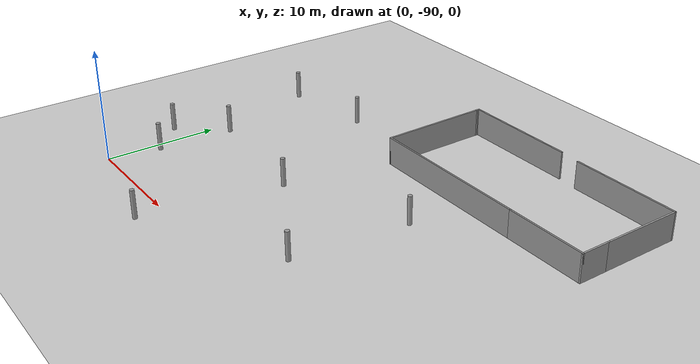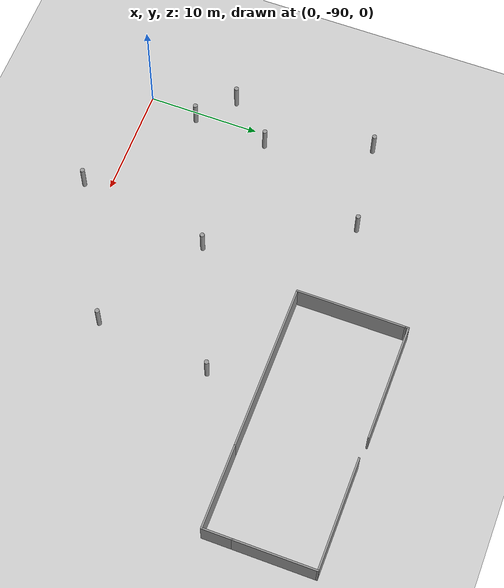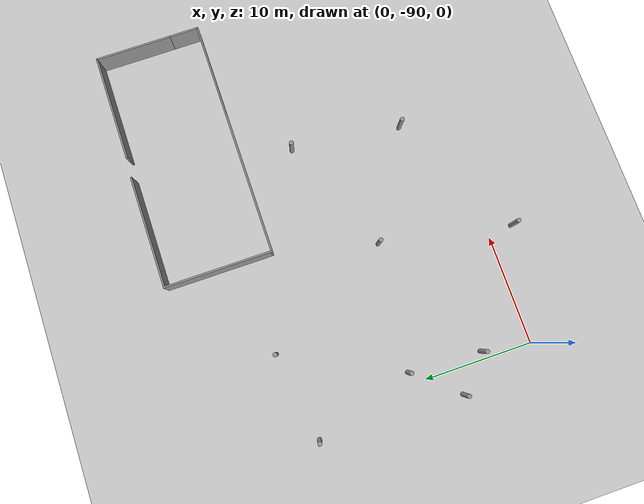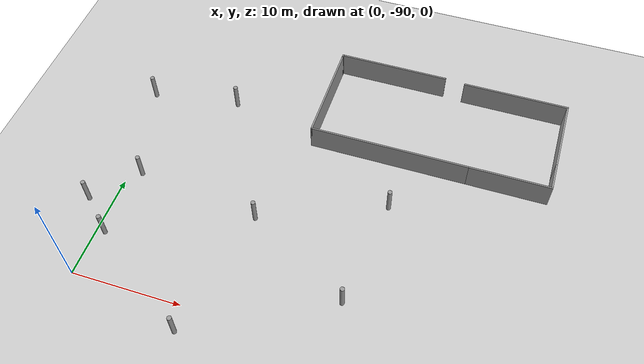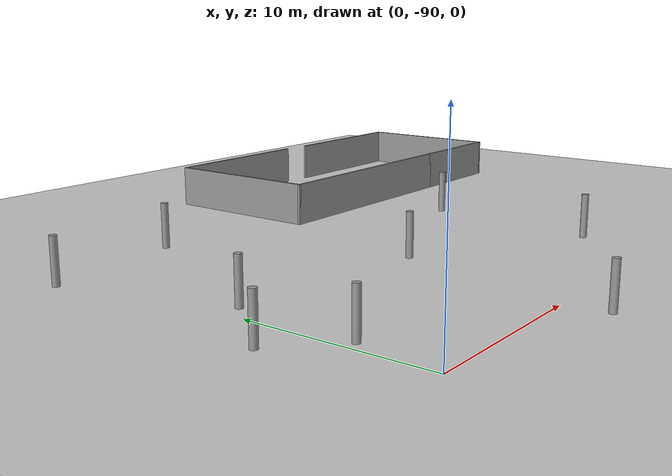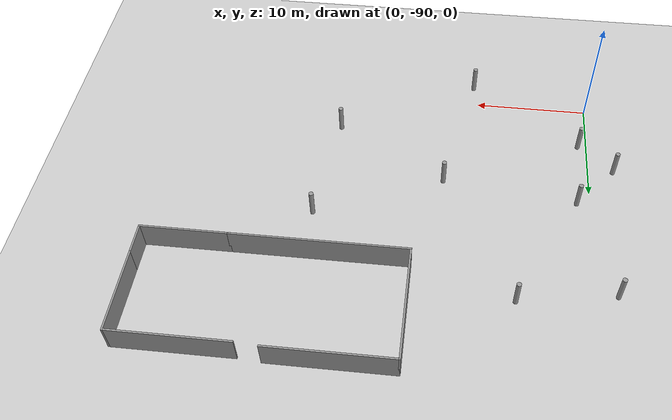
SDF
<sdf version="1.6">
 <world name="default">
  <model name="ground_plane">
   <static>1</static>
   <link name="link">
    <collision name="collision">
     <geometry><plane><normal>0 0 1</normal><size>100 100</size></plane></geometry>
     <surface><friction><ode><mu>100</mu><mu2>50</mu2></ode></friction></surface>
    </collision>
    <visual name="visual">
     <cast_shadows>0</cast_shadows>
     <geometry><plane><normal>0 0 1</normal><size>100 100</size></plane></geometry>
     <material>
      <script><uri>file://media/materials/scripts/gazebo.material</uri><name>Gazebo/Grey</name></script>
     </material>
    </visual>
   </link>
  </model>
  <model name="empty_pillars_12">
   <model name="empty_pillar_clone_32">
    <link name="link">
     <inertial>
      <mass>1</mass>
      <inertia><ixx>0.145833</ixx><ixy>0</ixy><ixz>0</ixz><iyy>0.145833</iyy><iyz>0</iyz><izz>0.125</izz></inertia>
     </inertial>
     <visual name="visual">
      <geometry><cylinder><radius>0.2</radius><length>5</length></cylinder></geometry>
      <material>
       <script><name>Gazebo/Grey</name><uri>file://media/materials/scripts/gazebo.material</uri></script>
       <shader type="vertex"><normal_map>__default__</normal_map></shader>
       <ambient>0.3 0.3 0.3 1</ambient>
       <diffuse>0.7 0.7 0.7 1</diffuse>
       <specular>0.01 0.01 0.01 1</specular>
       <emissive>0 0 0 1</emissive>
      </material>
     </visual>
     <collision name="collision">
      <geometry><cylinder><radius>0.05</radius><length>5</length></cylinder></geometry>
      <surface>
       <friction>
        <ode><mu>1</mu><mu2>1</mu2><fdir1>0 0 0</fdir1><slip1>0</slip1><slip2>0</slip2></ode>
        <torsional>
         <coefficient>1</coefficient>
         <patch_radius>0</patch_radius>
         <surface_radius>0</surface_radius>
         <use_patch_radius>1</use_patch_radius>
         <ode><slip>0</slip></ode>
        </torsional>
       </friction>
       <bounce><restitution_coefficient>0</restitution_coefficient><threshold>1e+06</threshold></bounce>
       <contact>
        <collide_without_contact>0</collide_without_contact>
        <collide_without_contact_bitmask>1</collide_without_contact_bitmask>
        <collide_bitmask>1</collide_bitmask>
        <ode>
         <soft_cfm>0</soft_cfm>
         <soft_erp>0.2</soft_erp>
         <kp>1e+13</kp>
         <kd>1</kd>
         <max_vel>0.01</max_vel>
         <min_depth>0</min_depth>
        </ode>
        <bullet>
         <split_impulse>1</split_impulse>
         <split_impulse_penetration_threshold>-0.01</split_impulse_penetration_threshold>
         <soft_cfm>0</soft_cfm>
         <soft_erp>0.2</soft_erp>
         <kp>1e+13</kp>
         <kd>1</kd>
        </bullet>
       </contact>
      </surface>
     </collision>
    </link>
    <static>0</static>
    <pose>21.9854 0.15966 0 0 -0 0</pose>
   </model>
   <model name="empty_pillar_clone_33">
    <link name="link">
     <inertial>
      <mass>1</mass>
      <inertia><ixx>0.145833</ixx><ixy>0</ixy><ixz>0</ixz><iyy>0.145833</iyy><iyz>0</iyz><izz>0.125</izz></inertia>
     </inertial>
     <visual name="visual">
      <geometry><cylinder><radius>0.2</radius><length>5</length></cylinder></geometry>
      <material>
       <script><name>Gazebo/Grey</name><uri>file://media/materials/scripts/gazebo.material</uri></script>
       <shader type="vertex"><normal_map>__default__</normal_map></shader>
       <ambient>0.3 0.3 0.3 1</ambient>
       <diffuse>0.7 0.7 0.7 1</diffuse>
       <specular>0.01 0.01 0.01 1</specular>
       <emissive>0 0 0 1</emissive>
      </material>
     </visual>
     <collision name="collision">
      <geometry><cylinder><radius>0.05</radius><length>5</length></cylinder></geometry>
      <surface>
       <friction>
        <ode><mu>1</mu><mu2>1</mu2><fdir1>0 0 0</fdir1><slip1>0</slip1><slip2>0</slip2></ode>
        <torsional>
         <coefficient>1</coefficient>
         <patch_radius>0</patch_radius>
         <surface_radius>0</surface_radius>
         <use_patch_radius>1</use_patch_radius>
         <ode><slip>0</slip></ode>
        </torsional>
       </friction>
       <bounce><restitution_coefficient>0</restitution_coefficient><threshold>1e+06</threshold></bounce>
       <contact>
        <collide_without_contact>0</collide_without_contact>
        <collide_without_contact_bitmask>1</collide_without_contact_bitmask>
        <collide_bitmask>1</collide_bitmask>
        <ode>
         <soft_cfm>0</soft_cfm>
         <soft_erp>0.2</soft_erp>
         <kp>1e+13</kp>
         <kd>1</kd>
         <max_vel>0.01</max_vel>
         <min_depth>0</min_depth>
        </ode>
        <bullet>
         <split_impulse>1</split_impulse>
         <split_impulse_penetration_threshold>-0.01</split_impulse_penetration_threshold>
         <soft_cfm>0</soft_cfm>
         <soft_erp>0.2</soft_erp>
         <kp>1e+13</kp>
         <kd>1</kd>
        </bullet>
       </contact>
      </surface>
     </collision>
    </link>
    <static>0</static>
    <pose>21.5621 -13.0704 0 0 -0 0</pose>
   </model>
   <model name="empty_pillar_clone_54">
    <link name="link">
     <inertial>
      <mass>1</mass>
      <inertia><ixx>0.145833</ixx><ixy>0</ixy><ixz>0</ixz><iyy>0.145833</iyy><iyz>0</iyz><izz>0.125</izz></inertia>
     </inertial>
     <visual name="visual">
      <geometry><cylinder><radius>0.2</radius><length>5</length></cylinder></geometry>
      <material>
       <script><name>Gazebo/Grey</name><uri>file://media/materials/scripts/gazebo.material</uri></script>
       <shader type="vertex"><normal_map>__default__</normal_map></shader>
       <ambient>0.3 0.3 0.3 1</ambient>
       <diffuse>0.7 0.7 0.7 1</diffuse>
       <specular>0.01 0.01 0.01 1</specular>
       <emissive>0 0 0 1</emissive>
      </material>
     </visual>
     <collision name="collision">
      <geometry><cylinder><radius>0.05</radius><length>5</length></cylinder></geometry>
      <surface>
       <friction>
        <ode><mu>1</mu><mu2>1</mu2><fdir1>0 0 0</fdir1><slip1>0</slip1><slip2>0</slip2></ode>
        <torsional>
         <coefficient>1</coefficient>
         <patch_radius>0</patch_radius>
         <surface_radius>0</surface_radius>
         <use_patch_radius>1</use_patch_radius>
         <ode><slip>0</slip></ode>
        </torsional>
       </friction>
       <bounce><restitution_coefficient>0</restitution_coefficient><threshold>1e+06</threshold></bounce>
       <contact>
        <collide_without_contact>0</collide_without_contact>
        <collide_without_contact_bitmask>1</collide_without_contact_bitmask>
        <collide_bitmask>1</collide_bitmask>
        <ode>
         <soft_cfm>0</soft_cfm>
         <soft_erp>0.2</soft_erp>
         <kp>1e+13</kp>
         <kd>1</kd>
         <max_vel>0.01</max_vel>
         <min_depth>0</min_depth>
        </ode>
        <bullet>
         <split_impulse>1</split_impulse>
         <split_impulse_penetration_threshold>-0.01</split_impulse_penetration_threshold>
         <soft_cfm>0</soft_cfm>
         <soft_erp>0.2</soft_erp>
         <kp>1e+13</kp>
         <kd>1</kd>
        </bullet>
       </contact>
      </surface>
     </collision>
    </link>
    <static>0</static>
    <pose>24.557 -15.8784 0 0 -0 0</pose>
   </model>
   <model name="empty_pillar_clone_6">
    <link name="link">
     <inertial>
      <mass>1</mass>
      <inertia><ixx>0.145833</ixx><ixy>0</ixy><ixz>0</ixz><iyy>0.145833</iyy><iyz>0</iyz><izz>0.125</izz></inertia>
     </inertial>
     <visual name="visual">
      <geometry><cylinder><radius>0.2</radius><length>5</length></cylinder></geometry>
      <material>
       <script><name>Gazebo/Grey</name><uri>file://media/materials/scripts/gazebo.material</uri></script>
       <shader type="vertex"><normal_map>__default__</normal_map></shader>
       <ambient>0.3 0.3 0.3 1</ambient>
       <diffuse>0.7 0.7 0.7 1</diffuse>
       <specular>0.01 0.01 0.01 1</specular>
       <emissive>0 0 0 1</emissive>
      </material>
     </visual>
     <collision name="collision">
      <geometry><cylinder><radius>0.05</radius><length>5</length></cylinder></geometry>
      <surface>
       <friction>
        <ode><mu>1</mu><mu2>1</mu2><fdir1>0 0 0</fdir1><slip1>0</slip1><slip2>0</slip2></ode>
        <torsional>
         <coefficient>1</coefficient>
         <patch_radius>0</patch_radius>
         <surface_radius>0</surface_radius>
         <use_patch_radius>1</use_patch_radius>
         <ode><slip>0</slip></ode>
        </torsional>
       </friction>
       <bounce><restitution_coefficient>0</restitution_coefficient><threshold>1e+06</threshold></bounce>
       <contact>
        <collide_without_contact>0</collide_without_contact>
        <collide_without_contact_bitmask>1</collide_without_contact_bitmask>
        <collide_bitmask>1</collide_bitmask>
        <ode>
         <soft_cfm>0</soft_cfm>
         <soft_erp>0.2</soft_erp>
         <kp>1e+13</kp>
         <kd>1</kd>
         <max_vel>0.01</max_vel>
         <min_depth>0</min_depth>
        </ode>
        <bullet>
         <split_impulse>1</split_impulse>
         <split_impulse_penetration_threshold>-0.01</split_impulse_penetration_threshold>
         <soft_cfm>0</soft_cfm>
         <soft_erp>0.2</soft_erp>
         <kp>1e+13</kp>
         <kd>1</kd>
        </bullet>
       </contact>
      </surface>
     </collision>
    </link>
    <static>0</static>
    <pose>24.9156 -9.11394 0 0 -0 0</pose>
   </model>
   <static>0</static>
   <pose>-23.7837 -69.5726 0 0 -0 0</pose>
  </model>
  <model name="Cangku">
   <pose>26.0464 -65.7485 0 0 -0 0</pose>
   <link name="Wall_0">
    <collision name="Wall_0_Collision">
     <geometry><box><size>15 0.15 2.5</size></box></geometry>
     <pose>0 0 1.25 0 -0 0</pose>
    </collision>
    <visual name="Wall_0_Visual">
     <pose>0 0 1.25 0 -0 0</pose>
     <geometry><box><size>15 0.15 2.5</size></box></geometry>
     <material>
      <script><uri>file://media/materials/scripts/gazebo.material</uri><name>Gazebo/Grey</name></script>
      <ambient>1 1 1 1</ambient>
     </material>
     <meta><layer>0</layer></meta>
    </visual>
    <pose>-3.675 -4.925 0 0 -0 0</pose>
   </link>
   <link name="Wall_1">
    <collision name="Wall_1_Collision">
     <geometry><box><size>7.5 0.15 2.5</size></box></geometry>
     <pose>0 0 1.25 0 -0 0</pose>
    </collision>
    <visual name="Wall_1_Visual">
     <pose>0 0 1.25 0 -0 0</pose>
     <geometry><box><size>7.5 0.15 2.5</size></box></geometry>
     <material>
      <script><uri>file://media/materials/scripts/gazebo.material</uri><name>Gazebo/Grey</name></script>
      <ambient>1 1 1 1</ambient>
     </material>
     <meta><layer>0</layer></meta>
    </visual>
    <pose>7.425 -4.925 0 0 -0 0</pose>
   </link>
   <link name="Wall_10">
    <collision name="Wall_10_Collision">
     <geometry><box><size>0.15 0.15 2.5</size></box></geometry>
     <pose>0 0 1.25 0 -0 0</pose>
    </collision>
    <visual name="Wall_10_Visual">
     <pose>0 0 1.25 0 -0 0</pose>
     <geometry><box><size>0.15 0.15 2.5</size></box></geometry>
     <material>
      <script><uri>file://media/materials/scripts/gazebo.material</uri><name>Gazebo/Grey</name></script>
      <ambient>1 1 1 1</ambient>
     </material>
     <meta><layer>0</layer></meta>
    </visual>
    <pose>-11.1 4.675 0 0 -0 0</pose>
   </link>
   <link name="Wall_11">
    <collision name="Wall_11_Collision">
     <geometry><box><size>0.15 0.15 2.5</size></box></geometry>
     <pose>0 0 1.25 0 -0 0</pose>
    </collision>
    <visual name="Wall_11_Visual">
     <pose>0 0 1.25 0 -0 0</pose>
     <geometry><box><size>0.15 0.15 2.5</size></box></geometry>
     <material>
      <script><uri>file://media/materials/scripts/gazebo.material</uri><name>Gazebo/Grey</name></script>
      <ambient>1 1 1 1</ambient>
     </material>
     <meta><layer>0</layer></meta>
    </visual>
    <pose>-11.1 4.675 0 0 -0 0</pose>
   </link>
   <link name="Wall_12">
    <collision name="Wall_12_Collision">
     <geometry><box><size>0.15 0.15 2.5</size></box></geometry>
     <pose>0 0 1.25 0 -0 0</pose>
    </collision>
    <visual name="Wall_12_Visual">
     <pose>0 0 1.25 0 -0 0</pose>
     <geometry><box><size>0.15 0.15 2.5</size></box></geometry>
     <material>
      <script><uri>file://media/materials/scripts/gazebo.material</uri><name>Gazebo/Grey</name></script>
      <ambient>1 1 1 1</ambient>
     </material>
     <meta><layer>0</layer></meta>
    </visual>
    <pose>-11.1 4.675 0 0 -0 0</pose>
   </link>
   <link name="Wall_14">
    <collision name="Wall_14_Collision">
     <geometry><box><size>10 0.15 2.5</size></box></geometry>
     <pose>0 0 1.25 0 -0 0</pose>
    </collision>
    <visual name="Wall_14_Visual">
     <pose>0 0 1.25 0 -0 0</pose>
     <geometry><box><size>10 0.15 2.5</size></box></geometry>
     <material>
      <script><uri>file://media/materials/scripts/gazebo.material</uri><name>Gazebo/Grey</name></script>
      <ambient>1 1 1 1</ambient>
     </material>
     <meta><layer>0</layer></meta>
    </visual>
    <pose>-11.1 -0 0 0 -0 1.5708</pose>
   </link>
   <link name="Wall_2">
    <collision name="Wall_2_Collision">
     <geometry><box><size>2.75 0.15 2.5</size></box></geometry>
     <pose>0 0 1.25 0 -0 0</pose>
    </collision>
    <visual name="Wall_2_Visual">
     <pose>0 0 1.25 0 -0 0</pose>
     <geometry><box><size>2.75 0.15 2.5</size></box></geometry>
     <material>
      <script><uri>file://media/materials/scripts/gazebo.material</uri><name>Gazebo/Grey</name></script>
      <ambient>1 1 1 1</ambient>
     </material>
     <meta><layer>0</layer></meta>
    </visual>
    <pose>11.1 -3.625 0 0 -0 1.5708</pose>
   </link>
   <link name="Wall_21">
    <collision name="Wall_21_Collision">
     <geometry><box><size>7.25 0.15 2.5</size></box></geometry>
     <pose>0 0 1.25 0 -0 0</pose>
    </collision>
    <visual name="Wall_21_Visual">
     <pose>0 0 1.25 0 -0 0</pose>
     <geometry><box><size>7.25 0.15 2.5</size></box></geometry>
     <material>
      <script><uri>file://media/materials/scripts/gazebo.material</uri><name>Gazebo/Grey</name></script>
      <ambient>1 1 1 1</ambient>
     </material>
     <meta><layer>0</layer></meta>
    </visual>
    <pose>11.1 1.225 0 0 -0 1.5708</pose>
   </link>
   <link name="Wall_22">
    <collision name="Wall_22_Collision">
     <geometry><box><size>10 0.15 2.5</size></box></geometry>
     <pose>0 0 1.25 0 -0 0</pose>
    </collision>
    <visual name="Wall_22_Visual">
     <pose>0 0 1.25 0 -0 0</pose>
     <geometry><box><size>10 0.15 2.5</size></box></geometry>
     <material>
      <script><uri>file://media/materials/scripts/gazebo.material</uri><name>Gazebo/Grey</name></script>
      <ambient>1 1 1 1</ambient>
     </material>
     <meta><layer>0</layer></meta>
    </visual>
    <pose>6.175 4.775 0 0 -0 3.14159</pose>
   </link>
   <link name="Wall_24">
    <collision name="Wall_24_Collision">
     <geometry><box><size>10.5 0.15 2.5</size></box></geometry>
     <pose>0 0 1.25 0 -0 0</pose>
    </collision>
    <visual name="Wall_24_Visual">
     <pose>0 0 1.25 0 -0 0</pose>
     <geometry><box><size>10.5 0.15 2.5</size></box></geometry>
     <material>
      <script><uri>file://media/materials/scripts/gazebo.material</uri><name>Gazebo/Grey</name></script>
      <ambient>1 1 1 1</ambient>
     </material>
     <meta><layer>0</layer></meta>
    </visual>
    <pose>-5.925 4.925 0 0 -0 0</pose>
   </link>
   <link name="Wall_9">
    <collision name="Wall_9_Collision">
     <geometry><box><size>0.15 0.15 2.5</size></box></geometry>
     <pose>0 0 1.25 0 -0 0</pose>
    </collision>
    <visual name="Wall_9_Visual">
     <pose>0 0 1.25 0 -0 0</pose>
     <geometry><box><size>0.15 0.15 2.5</size></box></geometry>
     <material>
      <script><uri>file://media/materials/scripts/gazebo.material</uri><name>Gazebo/Grey</name></script>
      <ambient>1 1 1 1</ambient>
     </material>
     <meta><layer>0</layer></meta>
    </visual>
    <pose>-11.1 4.675 0 0 -0 0</pose>
   </link>
   <static>1</static>
  </model>
  <model name="empty_pillar_0_clone_2">
   <link name="link">
    <inertial>
     <mass>1</mass>
     <inertia><ixx>0.145833</ixx><ixy>0</ixy><ixz>0</ixz><iyy>0.145833</iyy><iyz>0</iyz><izz>0.125</izz></inertia>
    </inertial>
    <visual name="visual">
     <geometry><cylinder><radius>0.2</radius><length>5</length></cylinder></geometry>
     <material>
      <script><name>Gazebo/Grey</name><uri>file://media/materials/scripts/gazebo.material</uri></script>
      <shader type="vertex"><normal_map>__default__</normal_map></shader>
      <ambient>0.3 0.3 0.3 1</ambient>
      <diffuse>0.7 0.7 0.7 1</diffuse>
      <specular>0.01 0.01 0.01 1</specular>
      <emissive>0 0 0 1</emissive>
     </material>
    </visual>
    <collision name="collision">
     <geometry><cylinder><radius>0.05</radius><length>5</length></cylinder></geometry>
     <surface>
      <friction>
       <ode><mu>1</mu><mu2>1</mu2><fdir1>0 0 0</fdir1><slip1>0</slip1><slip2>0</slip2></ode>
       <torsional>
        <coefficient>1</coefficient>
        <patch_radius>0</patch_radius>
        <surface_radius>0</surface_radius>
        <use_patch_radius>1</use_patch_radius>
        <ode><slip>0</slip></ode>
       </torsional>
      </friction>
      <bounce><restitution_coefficient>0</restitution_coefficient><threshold>1e+06</threshold></bounce>
      <contact>
       <collide_without_contact>0</collide_without_contact>
       <collide_without_contact_bitmask>1</collide_without_contact_bitmask>
       <collide_bitmask>1</collide_bitmask>
       <ode>
        <soft_cfm>0</soft_cfm>
        <soft_erp>0.2</soft_erp>
        <kp>1e+13</kp>
        <kd>1</kd>
        <max_vel>0.01</max_vel>
        <min_depth>0</min_depth>
       </ode>
       <bullet>
        <split_impulse>1</split_impulse>
        <split_impulse_penetration_threshold>-0.01</split_impulse_penetration_threshold>
        <soft_cfm>0</soft_cfm>
        <soft_erp>0.2</soft_erp>
        <kp>1e+13</kp>
        <kd>1</kd>
       </bullet>
      </contact>
     </surface>
    </collision>
   </link>
   <static>0</static>
   <pose>12.8006 -80.1039 0 0 -0 0</pose>
  </model>
  <model name="empty_pillar_0_clone_4">
   <link name="link">
    <inertial>
     <mass>1</mass>
     <inertia><ixx>0.145833</ixx><ixy>0</ixy><ixz>0</ixz><iyy>0.145833</iyy><iyz>0</iyz><izz>0.125</izz></inertia>
    </inertial>
    <visual name="visual">
     <geometry><cylinder><radius>0.2</radius><length>5</length></cylinder></geometry>
     <material>
      <script><name>Gazebo/Grey</name><uri>file://media/materials/scripts/gazebo.material</uri></script>
      <shader type="vertex"><normal_map>__default__</normal_map></shader>
      <ambient>0.3 0.3 0.3 1</ambient>
      <diffuse>0.7 0.7 0.7 1</diffuse>
      <specular>0.01 0.01 0.01 1</specular>
      <emissive>0 0 0 1</emissive>
     </material>
    </visual>
    <collision name="collision">
     <geometry><cylinder><radius>0.05</radius><length>5</length></cylinder></geometry>
     <surface>
      <friction>
       <ode><mu>1</mu><mu2>1</mu2><fdir1>0 0 0</fdir1><slip1>0</slip1><slip2>0</slip2></ode>
       <torsional>
        <coefficient>1</coefficient>
        <patch_radius>0</patch_radius>
        <surface_radius>0</surface_radius>
        <use_patch_radius>1</use_patch_radius>
        <ode><slip>0</slip></ode>
       </torsional>
      </friction>
      <bounce><restitution_coefficient>0</restitution_coefficient><threshold>1e+06</threshold></bounce>
      <contact>
       <collide_without_contact>0</collide_without_contact>
       <collide_without_contact_bitmask>1</collide_without_contact_bitmask>
       <collide_bitmask>1</collide_bitmask>
       <ode>
        <soft_cfm>0</soft_cfm>
        <soft_erp>0.2</soft_erp>
        <kp>1e+13</kp>
        <kd>1</kd>
        <max_vel>0.01</max_vel>
        <min_depth>0</min_depth>
       </ode>
       <bullet>
        <split_impulse>1</split_impulse>
        <split_impulse_penetration_threshold>-0.01</split_impulse_penetration_threshold>
        <soft_cfm>0</soft_cfm>
        <soft_erp>0.2</soft_erp>
        <kp>1e+13</kp>
        <kd>1</kd>
       </bullet>
      </contact>
     </surface>
    </collision>
   </link>
   <static>0</static>
   <pose>22.6285 -85.7175 0 0 -0 0</pose>
  </model>
  <model name="empty_pillar_0_clone_9">
   <link name="link">
    <inertial>
     <mass>1</mass>
     <inertia><ixx>0.145833</ixx><ixy>0</ixy><ixz>0</ixz><iyy>0.145833</iyy><iyz>0</iyz><izz>0.125</izz></inertia>
    </inertial>
    <visual name="visual">
     <geometry><cylinder><radius>0.2</radius><length>5</length></cylinder></geometry>
     <material>
      <script><name>Gazebo/Grey</name><uri>file://media/materials/scripts/gazebo.material</uri></script>
      <shader type="vertex"><normal_map>__default__</normal_map></shader>
      <ambient>0.3 0.3 0.3 1</ambient>
      <diffuse>0.7 0.7 0.7 1</diffuse>
      <specular>0.01 0.01 0.01 1</specular>
      <emissive>0 0 0 1</emissive>
     </material>
    </visual>
    <collision name="collision">
     <geometry><cylinder><radius>0.05</radius><length>5</length></cylinder></geometry>
     <surface>
      <friction>
       <ode><mu>1</mu><mu2>1</mu2><fdir1>0 0 0</fdir1><slip1>0</slip1><slip2>0</slip2></ode>
       <torsional>
        <coefficient>1</coefficient>
        <patch_radius>0</patch_radius>
        <surface_radius>0</surface_radius>
        <use_patch_radius>1</use_patch_radius>
        <ode><slip>0</slip></ode>
       </torsional>
      </friction>
      <bounce><restitution_coefficient>0</restitution_coefficient><threshold>1e+06</threshold></bounce>
      <contact>
       <collide_without_contact>0</collide_without_contact>
       <collide_without_contact_bitmask>1</collide_without_contact_bitmask>
       <collide_bitmask>1</collide_bitmask>
       <ode>
        <soft_cfm>0</soft_cfm>
        <soft_erp>0.2</soft_erp>
        <kp>1e+13</kp>
        <kd>1</kd>
        <max_vel>0.01</max_vel>
        <min_depth>0</min_depth>
       </ode>
       <bullet>
        <split_impulse>1</split_impulse>
        <split_impulse_penetration_threshold>-0.01</split_impulse_penetration_threshold>
        <soft_cfm>0</soft_cfm>
        <soft_erp>0.2</soft_erp>
        <kp>1e+13</kp>
        <kd>1</kd>
       </bullet>
      </contact>
     </surface>
    </collision>
   </link>
   <static>0</static>
   <pose>10.5067 -92.2711 0 0 -0 0</pose>
  </model>
  <model name="empty_pillar_0_clone_10">
   <link name="link">
    <inertial>
     <mass>1</mass>
     <inertia><ixx>0.145833</ixx><ixy>0</ixy><ixz>0</ixz><iyy>0.145833</iyy><iyz>0</iyz><izz>0.125</izz></inertia>
    </inertial>
    <visual name="visual">
     <geometry><cylinder><radius>0.2</radius><length>5</length></cylinder></geometry>
     <material>
      <script><name>Gazebo/Grey</name><uri>file://media/materials/scripts/gazebo.material</uri></script>
      <shader type="vertex"><normal_map>__default__</normal_map></shader>
      <ambient>0.3 0.3 0.3 1</ambient>
      <diffuse>0.7 0.7 0.7 1</diffuse>
      <specular>0.01 0.01 0.01 1</specular>
      <emissive>0 0 0 1</emissive>
     </material>
    </visual>
    <collision name="collision">
     <geometry><cylinder><radius>0.05</radius><length>5</length></cylinder></geometry>
     <surface>
      <friction>
       <ode><mu>1</mu><mu2>1</mu2><fdir1>0 0 0</fdir1><slip1>0</slip1><slip2>0</slip2></ode>
       <torsional>
        <coefficient>1</coefficient>
        <patch_radius>0</patch_radius>
        <surface_radius>0</surface_radius>
        <use_patch_radius>1</use_patch_radius>
        <ode><slip>0</slip></ode>
       </torsional>
      </friction>
      <bounce><restitution_coefficient>0</restitution_coefficient><threshold>1e+06</threshold></bounce>
      <contact>
       <collide_without_contact>0</collide_without_contact>
       <collide_without_contact_bitmask>1</collide_without_contact_bitmask>
       <collide_bitmask>1</collide_bitmask>
       <ode>
        <soft_cfm>0</soft_cfm>
        <soft_erp>0.2</soft_erp>
        <kp>1e+13</kp>
        <kd>1</kd>
        <max_vel>0.01</max_vel>
        <min_depth>0</min_depth>
       </ode>
       <bullet>
        <split_impulse>1</split_impulse>
        <split_impulse_penetration_threshold>-0.01</split_impulse_penetration_threshold>
        <soft_cfm>0</soft_cfm>
        <soft_erp>0.2</soft_erp>
        <kp>1e+13</kp>
        <kd>1</kd>
       </bullet>
      </contact>
     </surface>
    </collision>
   </link>
   <static>0</static>
   <pose>6.36627 -68.155 0 0 -0 0</pose>
  </model>
  <model name="empty_pillar_0_clone_11">
   <link name="link">
    <inertial>
     <mass>1</mass>
     <inertia><ixx>0.145833</ixx><ixy>0</ixy><ixz>0</ixz><iyy>0.145833</iyy><iyz>0</iyz><izz>0.125</izz></inertia>
    </inertial>
    <visual name="visual">
     <geometry><cylinder><radius>0.2</radius><length>5</length></cylinder></geometry>
     <material>
      <script><name>Gazebo/Grey</name><uri>file://media/materials/scripts/gazebo.material</uri></script>
      <shader type="vertex"><normal_map>__default__</normal_map></shader>
      <ambient>0.3 0.3 0.3 1</ambient>
      <diffuse>0.7 0.7 0.7 1</diffuse>
      <specular>0.01 0.01 0.01 1</specular>
      <emissive>0 0 0 1</emissive>
     </material>
    </visual>
    <collision name="collision">
     <geometry><cylinder><radius>0.05</radius><length>5</length></cylinder></geometry>
     <surface>
      <friction>
       <ode><mu>1</mu><mu2>1</mu2><fdir1>0 0 0</fdir1><slip1>0</slip1><slip2>0</slip2></ode>
       <torsional>
        <coefficient>1</coefficient>
        <patch_radius>0</patch_radius>
        <surface_radius>0</surface_radius>
        <use_patch_radius>1</use_patch_radius>
        <ode><slip>0</slip></ode>
       </torsional>
      </friction>
      <bounce><restitution_coefficient>0</restitution_coefficient><threshold>1e+06</threshold></bounce>
      <contact>
       <collide_without_contact>0</collide_without_contact>
       <collide_without_contact_bitmask>1</collide_without_contact_bitmask>
       <collide_bitmask>1</collide_bitmask>
       <ode>
        <soft_cfm>0</soft_cfm>
        <soft_erp>0.2</soft_erp>
        <kp>1e+13</kp>
        <kd>1</kd>
        <max_vel>0.01</max_vel>
        <min_depth>0</min_depth>
       </ode>
       <bullet>
        <split_impulse>1</split_impulse>
        <split_impulse_penetration_threshold>-0.01</split_impulse_penetration_threshold>
        <soft_cfm>0</soft_cfm>
        <soft_erp>0.2</soft_erp>
        <kp>1e+13</kp>
        <kd>1</kd>
       </bullet>
      </contact>
     </surface>
    </collision>
   </link>
   <static>0</static>
   <pose>23.7628 -75.4458 0 0 -0 0</pose>
  </model>
 </world>
</sdf>
